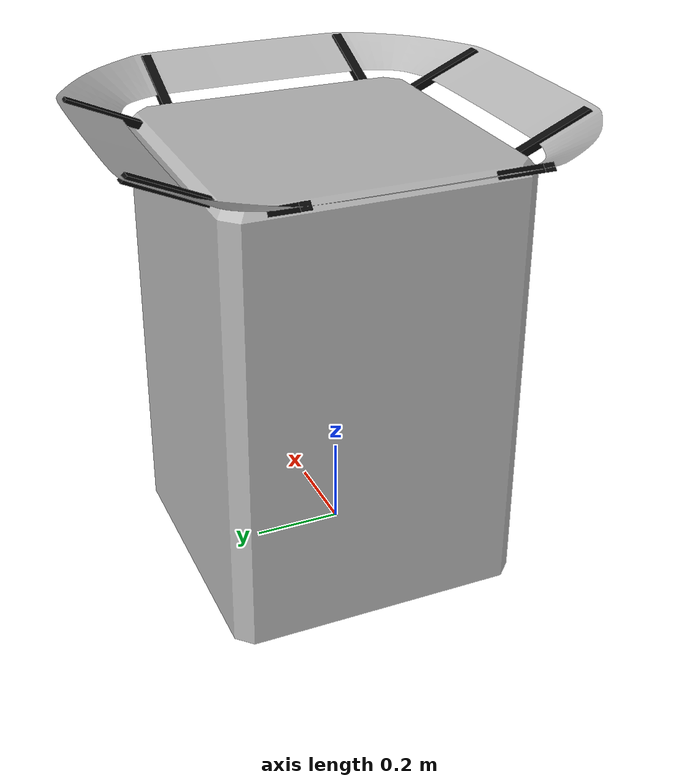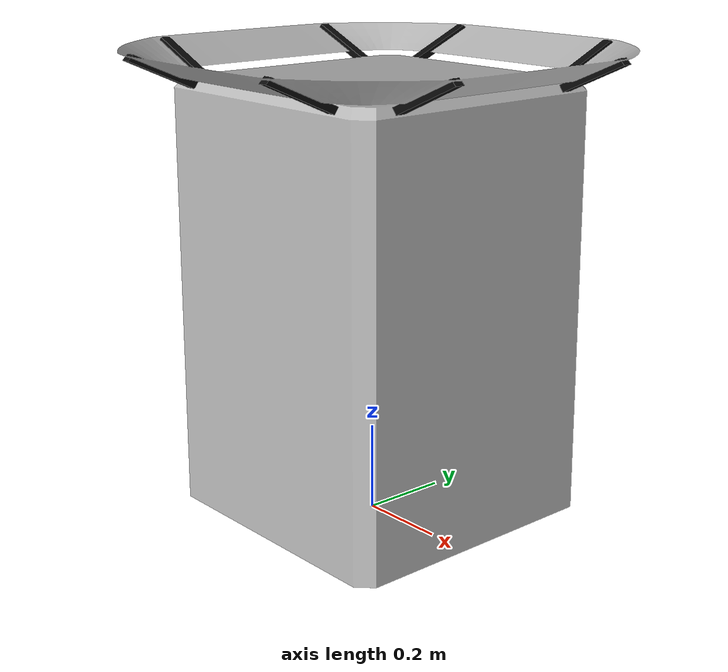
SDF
<?xml version="1.0" ?>
<sdf version="1.5">
  <model name="dronepoint_red">
    <static>true</static>
    <link name="link">
      <collision name="collision">
        <geometry>
          <mesh>
            <uri>model://dronepoint_red/meshes/dronepoint.dae</uri>
            <scale>0.3 0.3 0.2</scale>
          </mesh>
        </geometry>
      </collision>
      <visual name="visual">
        <geometry>
          <mesh>
            <uri>model://dronepoint_red/meshes/dronepoint.dae</uri>
            <scale>0.3 0.3 0.2</scale>
          </mesh>
        </geometry>
      </visual>
    </link>
  </model>
</sdf>
